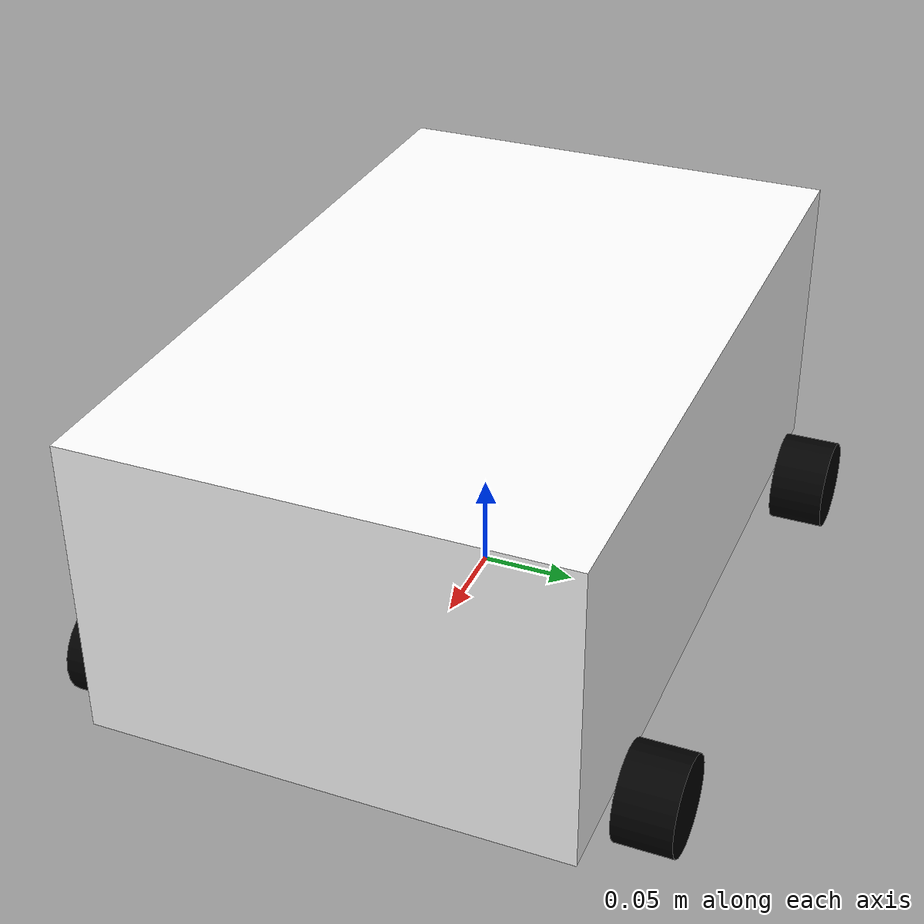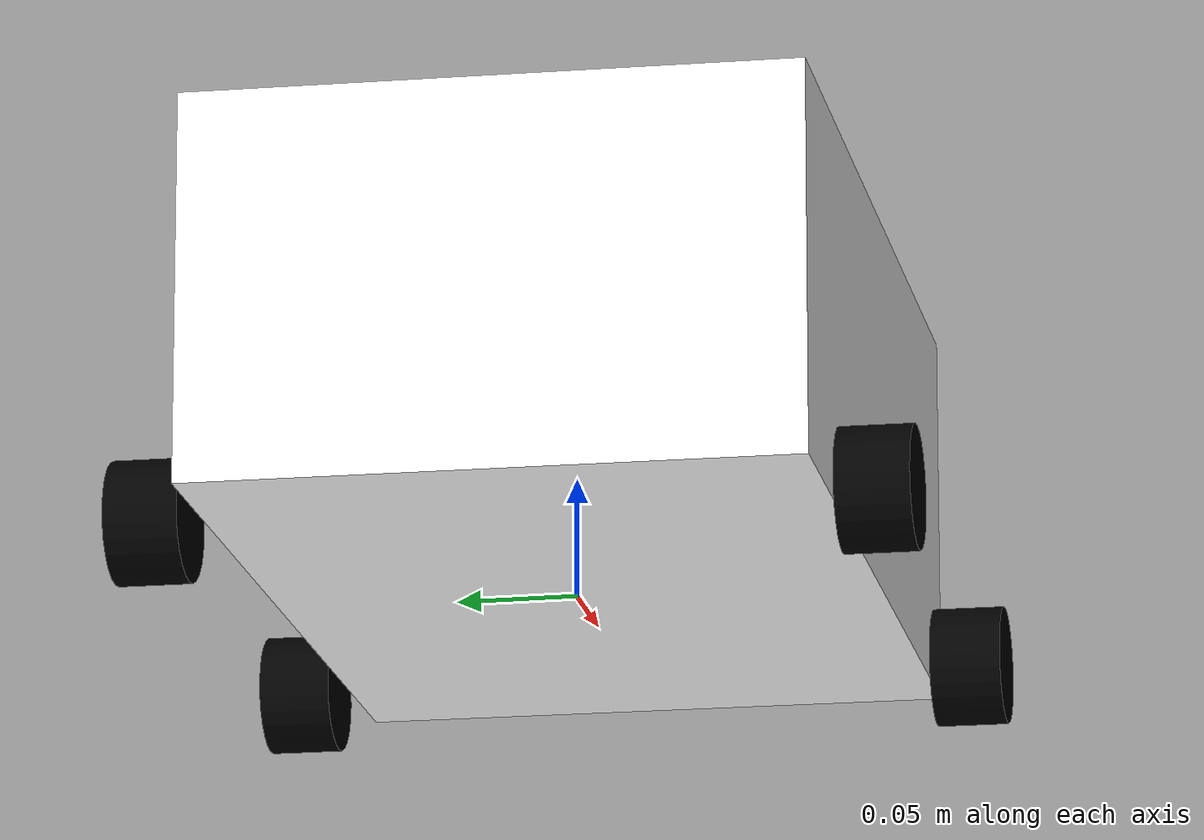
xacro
<?xml version="1.0"?>
<robot xmlns:xacro="http://www.ros.org/wiki/xacro">

    <xacro:include filename="inertial_macros.xacro"/>

    <xacro:property name="chassis_length" value="0.4"/>
    <xacro:property name="chassis_width" value="0.25"/>
    <xacro:property name="chassis_height" value="0.16"/>
    <xacro:property name="chassis_mass" value="1.0"/>
    <xacro:property name="wheel_radius" value="0.025"/>
    <xacro:property name="wheel_thickness" value="0.03"/>
    <xacro:property name="wheel_mass" value="0.05"/>
    <xacro:property name="wheel_offset_x" value="0.145"/>
    <xacro:property name="wheel_offset_y" value="0.145"/> <!--33 offset total-->
    <xacro:property name="wheel_offset_z" value="0.01"/>

    <material name="white">
        <color rgba="1 1 1 1" />
    </material>

    <material name="orange">
        <color rgba="1 0.3 0.1 1" />
    </material>

    <material name="blue">
        <color rgba="0.2 0.2 1 1" />
    </material>

    <material name="black">
        <color rgba="0 0 0 1" />
    </material>

    <material name="red">
        <color rgba="1 0 0 1" />
    </material>

<!-- BASE LINK -->

    <link name="base_link">

    </link>

    <joint name="base_footprint_joint" type="fixed">
        <parent link="base_link"/>
        <child link="base_footprint"/>
        <origin xyz="0 0 0" rpy="0 0 0"/>
    </joint>

    <link name="base_footprint">
    </link>

<!-- CHASSIS  LINK-->

    <joint name="chassis_joint" type="fixed">
        <parent link="base_link" />
        <child link="chassis"/>
        <origin xyz="0 0 0"/>
    </joint>

    <link name="chassis">
        <visual>
            <origin xyz="0 0 ${chassis_height/2}"/>
            <geometry>
                <box size="${chassis_length} ${chassis_width} ${chassis_height}"/>
            </geometry>
            <material name="white"/>
        </visual>
        <collision>
            <origin xyz="0 0 ${chassis_height/2}"/>
            <geometry>
                <box size="${chassis_length} ${chassis_width} ${chassis_height}"/>
            </geometry>
        </collision>
        <xacro:inertial_box mass="0.5" x="${chassis_length}" y="${chassis_width}" z="${chassis_height}">
            <origin xyz="0 0 ${chassis_height/2}" rpy="0 0 0"/>
        </xacro:inertial_box>
    </link>

    <gazebo reference="chassis">
        <material>Gazebo/Orange</material>
    </gazebo>

<!-- LEFT FRONT WHEEL -->

<link name="wheel_front_left_link">
  <visual>
    <geometry>
      <cylinder radius="${wheel_radius}" length="${wheel_thickness}"/>
    </geometry>
    <origin xyz="0 0 0" rpy="0 0 0"/> <!-- agar menghadap ke samping -->
    <material name="black">
      <color rgba="0 0 0 1"/>
    </material>
  </visual>
  <collision>
    <geometry>
      <sphere radius="${wheel_radius}"/>
      <origin xyz="0 0 0" rpy="0 0 0"/>
    </geometry>
    <friction>
      <ode>
        <mu>1000000</mu>
        <mu2>1000000</mu2>
        <slip1>0.01</slip1>
        <slip2>0.01</slip2>
      </ode>
    </friction>
  </collision>
  <xacro:inertial_cylinder mass="${wheel_mass}" length="${wheel_thickness}" radius="${wheel_radius}">
    <origin xyz="0 0 0" rpy="0 0 0"/>
  </xacro:inertial_cylinder>
</link>
<gazebo reference="wheel_front_left_link">
    <material>Gazebo/Blue</material>
</gazebo>
<joint name="base_to_wheel_front_left" type="continuous">
  <parent link="base_link"/>
  <child link="wheel_front_left_link"/>
  <origin xyz="${wheel_offset_x} ${wheel_offset_y} 0" rpy="-${pi/2} 0 0"/>
  <axis xyz="0 0 1"/>
</joint>

<!-- kanan-depan -->
<link name="wheel_front_right_link">
  <visual>
    <geometry>
      <cylinder radius="${wheel_radius}" length="${wheel_thickness}"/>
    </geometry>
    <origin xyz="0 0 0" rpy="0 0 0"/>
    <material name="black">
      <color rgba="0 0 0 1"/>
    </material>
  </visual>
  <collision>
    <geometry>
      <sphere radius="${wheel_radius}"/>
      <origin xyz="0 0 0" rpy="0 0 0"/>
    </geometry>
    <friction>
      <ode>
        <mu>1000000</mu>
        <mu2>1000000</mu2>
        <slip1>0.01</slip1>
        <slip2>0.01</slip2>
      </ode>
    </friction>
  </collision>
  <xacro:inertial_cylinder mass="${wheel_mass}" length="${wheel_thickness}" radius="${wheel_radius}">
    <origin xyz="0 0 0" rpy="0 0 0"/>
  </xacro:inertial_cylinder>
</link>
<gazebo reference="wheel_front_right_link">
    <material>Gazebo/Blue</material>
</gazebo>
<joint name="base_to_wheel_front_right" type="continuous">
  <parent link="base_link"/>
  <child link="wheel_front_right_link"/>
  <origin xyz="${wheel_offset_x} ${-wheel_offset_y} 0" rpy="${pi/2} 0 0"/>
  <axis xyz="0 0 -1"/>
</joint>

<!-- kiri-belakang -->
<link name="wheel_back_left_link">
  <visual>
    <geometry>
      <cylinder radius="${wheel_radius}" length="${wheel_thickness}"/>
    </geometry>
    <origin xyz="0 0 0" rpy="0 0 0"/>
    <material name="black">
      <color rgba="0 0 0 1"/>
    </material>
  </visual>
  <collision>
    <geometry>
      <sphere radius="${wheel_radius}"/>
      <origin xyz="0 0 0" rpy="0 0 0"/>
    </geometry>
    <friction>
      <ode>
        <mu>1000000</mu>
        <mu2>1000000</mu2>
        <slip1>0.01</slip1>
        <slip2>0.01</slip2>
      </ode>
    </friction>
  </collision>
  <xacro:inertial_cylinder mass="${wheel_mass}" length="${wheel_thickness}" radius="${wheel_radius}">
    <origin xyz="0 0 0" rpy="0 0 0"/>
  </xacro:inertial_cylinder>
</link>
<gazebo reference="wheel_back_left_link">
    <material>Gazebo/Blue</material>
</gazebo>
<joint name="base_to_wheel_back_left" type="continuous">
  <parent link="base_link"/>
  <child link="wheel_back_left_link"/>
  <origin xyz="${-wheel_offset_x} ${wheel_offset_y} 0" rpy="${pi/2} 0 0"/>
  <axis xyz="0 0 -1"/>
</joint>

<!-- kanan-belakang -->
<link name="wheel_back_right_link">
  <visual>
    <geometry>
      <cylinder radius="${wheel_radius}" length="${wheel_thickness}"/>
    </geometry>
    <origin xyz="0 0 0" rpy="0 0 0"/>
    <material name="black">
      <color rgba="0 0 0 1"/>
    </material>
  </visual>
  <collision>
    <geometry>
      <sphere radius="${wheel_radius}"/>
      <origin xyz="0 0 0" rpy="0 0 0"/>
    </geometry>
    <friction>
      <ode>
        <mu>1000000</mu>
        <mu2>1000000</mu2>
        <slip1>0.01</slip1>
        <slip2>0.01</slip2>
      </ode>
    </friction>
  </collision>
  <xacro:inertial_cylinder mass="${wheel_mass}" length="${wheel_thickness}" radius="${wheel_radius}">
    <origin xyz="0 0 0" rpy="0 0 0"/>
  </xacro:inertial_cylinder>
</link>
<gazebo reference="wheel_back_right_link">
    <material>Gazebo/Blue</material>
</gazebo>
<joint name="base_to_wheel_back_right" type="continuous">
  <parent link="base_link"/>
  <child link="wheel_back_right_link"/>
  <origin xyz="${-wheel_offset_x} ${-wheel_offset_y} 0" rpy="${pi/2} 0 0"/>
  <axis xyz="0 0 -1"/>
</joint>

</robot>
